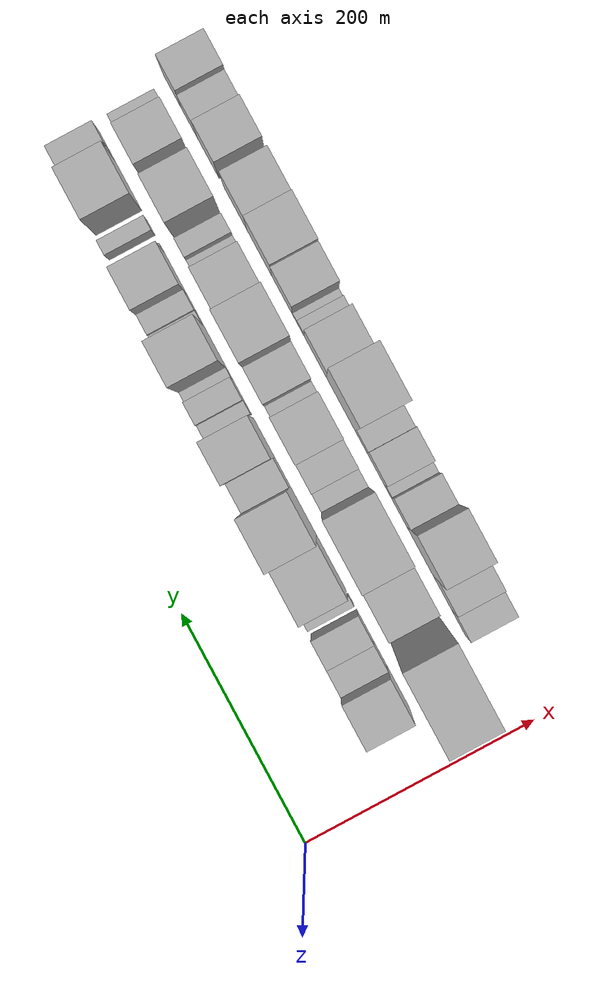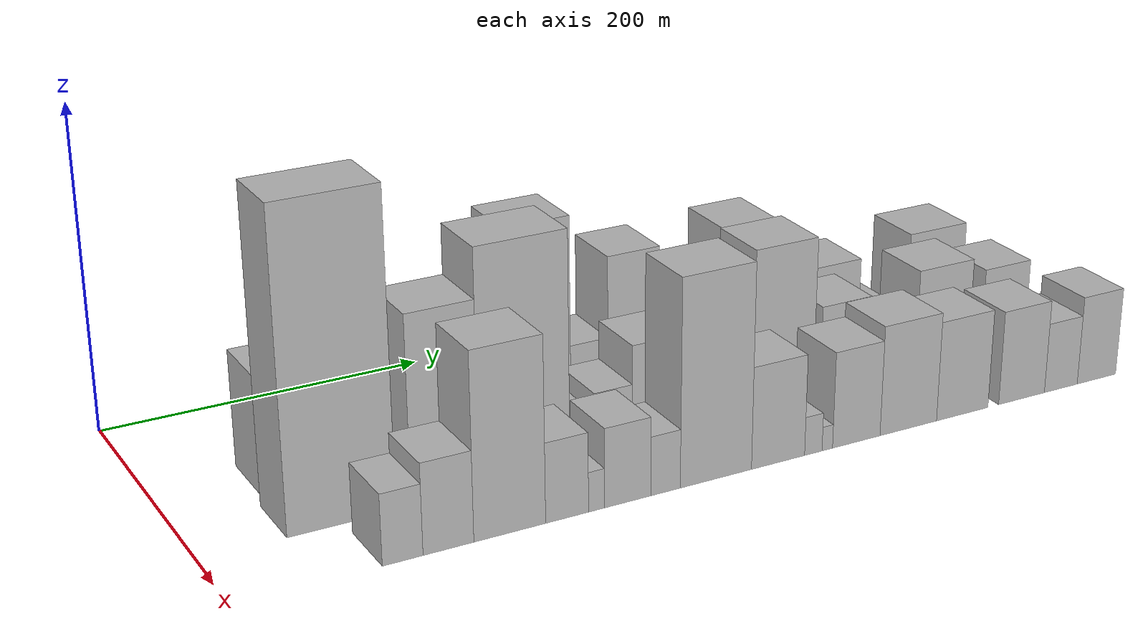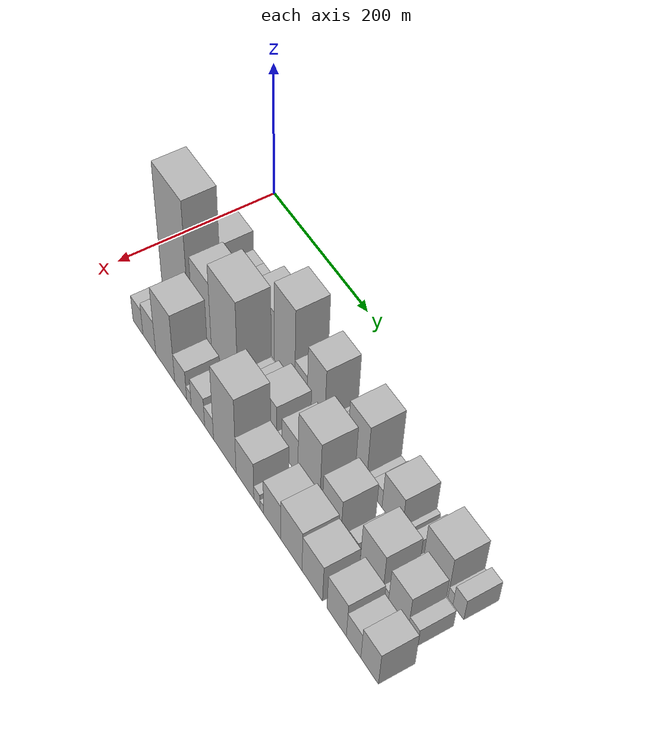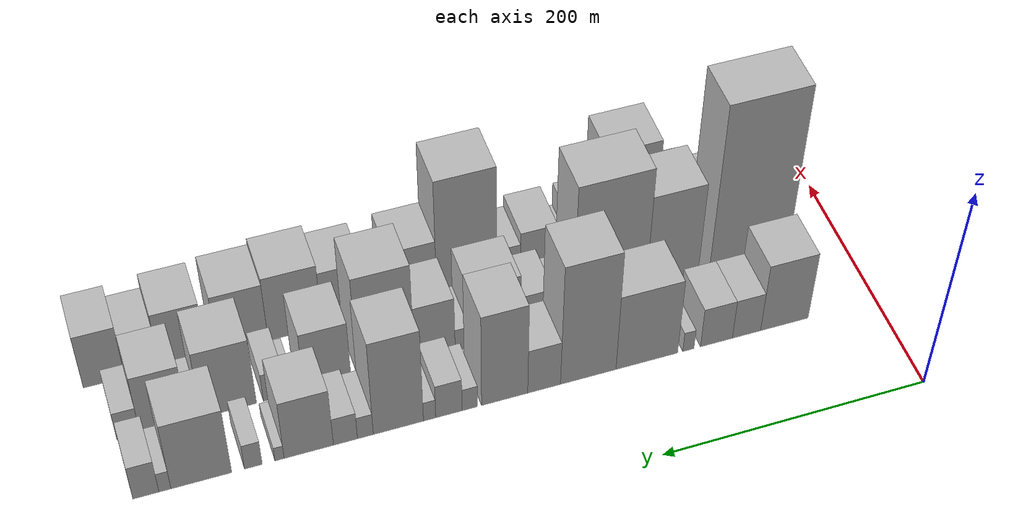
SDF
<sdf version="1.6">
 <world name="default">
  <model name="building_20">
   <static>1</static>
   <pose>100.0000 73.5250 0 0.000000 0.000000 0.000000</pose>
   <link name="link">
    <pose>0 0 36.00 0 0 0</pose>
    <collision name="collision"><geometry><box><size>40.0000 37.7700 72.0000</size></box></geometry></collision>
    <visual name="visual">
     <cast_shadows>0</cast_shadows>
     <geometry><box><size>40.0000 37.7700 72.0000</size></box></geometry>
     <material>
      <script>
       <uri>model://HANNAS_wall/materials/scripts</uri>
       <uri>model://HANNAS_wall/materials/textures</uri>
       <name>vrc/HANNAS_wall</name>
      </script>
     </material>
    </visual>
   </link>
  </model>
  <model name="building_21">
   <static>1</static>
   <pose>100.0000 103.5133 0 0.000000 0.000000 0.000000</pose>
   <link name="link">
    <pose>0 0 21.00 0 0 0</pose>
    <collision name="collision"><geometry><box><size>40.0000 22.2065 42.0000</size></box></geometry></collision>
    <visual name="visual">
     <cast_shadows>0</cast_shadows>
     <geometry><box><size>40.0000 22.2065 42.0000</size></box></geometry>
     <material>
      <script>
       <uri>model://HANNAS_wall/materials/scripts</uri>
       <uri>model://HANNAS_wall/materials/textures</uri>
       <name>vrc/HANNAS_wall</name>
      </script>
     </material>
    </visual>
   </link>
  </model>
  <model name="building_22">
   <static>1</static>
   <pose>100.0000 127.0962 0 0.000000 0.000000 0.000000</pose>
   <link name="link">
    <pose>0 0 21.00 0 0 0</pose>
    <collision name="collision"><geometry><box><size>40.0000 24.9593 42.0000</size></box></geometry></collision>
    <visual name="visual">
     <cast_shadows>0</cast_shadows>
     <geometry><box><size>40.0000 24.9593 42.0000</size></box></geometry>
     <material>
      <script>
       <uri>model://HANNAS_wall/materials/scripts</uri>
       <uri>model://HANNAS_wall/materials/textures</uri>
       <name>vrc/HANNAS_wall</name>
      </script>
     </material>
    </visual>
   </link>
  </model>
  <model name="building_23">
   <static>1</static>
   <pose>100.0000 148.9593 0 0.000000 0.000000 0.000000</pose>
   <link name="link">
    <pose>0 0 10.50 0 0 0</pose>
    <collision name="collision"><geometry><box><size>40.0000 8.7669 21.0000</size></box></geometry></collision>
    <visual name="visual">
     <cast_shadows>0</cast_shadows>
     <geometry><box><size>40.0000 8.7669 21.0000</size></box></geometry>
     <material>
      <script>
       <uri>model://HANNAS_wall/materials/scripts</uri>
       <uri>model://HANNAS_wall/materials/textures</uri>
       <name>vrc/HANNAS_wall</name>
      </script>
     </material>
    </visual>
   </link>
  </model>
  <model name="building_24">
   <static>1</static>
   <pose>100.0000 181.0930 0 0.000000 0.000000 0.000000</pose>
   <link name="link">
    <pose>0 0 40.50 0 0 0</pose>
    <collision name="collision"><geometry><box><size>40.0000 47.5004 81.0000</size></box></geometry></collision>
    <visual name="visual">
     <cast_shadows>0</cast_shadows>
     <geometry><box><size>40.0000 47.5004 81.0000</size></box></geometry>
     <material>
      <script>
       <uri>model://HANNAS_wall/materials/scripts</uri>
       <uri>model://HANNAS_wall/materials/textures</uri>
       <name>vrc/HANNAS_wall</name>
      </script>
     </material>
    </visual>
   </link>
  </model>
  <model name="building_25">
   <static>1</static>
   <pose>100.0000 225.9789 0 0.000000 0.000000 0.000000</pose>
   <link name="link">
    <pose>0 0 64.50 0 0 0</pose>
    <collision name="collision"><geometry><box><size>40.0000 42.2713 129.0000</size></box></geometry></collision>
    <visual name="visual">
     <cast_shadows>0</cast_shadows>
     <geometry><box><size>40.0000 42.2713 129.0000</size></box></geometry>
     <material>
      <script>
       <uri>model://HANNAS_wall/materials/scripts</uri>
       <uri>model://HANNAS_wall/materials/textures</uri>
       <name>vrc/HANNAS_wall</name>
      </script>
     </material>
    </visual>
   </link>
  </model>
  <model name="building_26">
   <static>1</static>
   <pose>100.0000 259.4690 0 0.000000 0.000000 0.000000</pose>
   <link name="link">
    <pose>0 0 24.00 0 0 0</pose>
    <collision name="collision"><geometry><box><size>40.0000 24.7089 48.0000</size></box></geometry></collision>
    <visual name="visual">
     <cast_shadows>0</cast_shadows>
     <geometry><box><size>40.0000 24.7089 48.0000</size></box></geometry>
     <material>
      <script>
       <uri>model://HANNAS_wall/materials/scripts</uri>
       <uri>model://HANNAS_wall/materials/textures</uri>
       <name>vrc/HANNAS_wall</name>
      </script>
     </material>
    </visual>
   </link>
  </model>
  <model name="building_27">
   <static>1</static>
   <pose>100.0000 289.0918 0 0.000000 0.000000 0.000000</pose>
   <link name="link">
    <pose>0 0 49.50 0 0 0</pose>
    <collision name="collision"><geometry><box><size>40.0000 34.5367 99.0000</size></box></geometry></collision>
    <visual name="visual">
     <cast_shadows>0</cast_shadows>
     <geometry><box><size>40.0000 34.5367 99.0000</size></box></geometry>
     <material>
      <script>
       <uri>model://HANNAS_wall/materials/scripts</uri>
       <uri>model://HANNAS_wall/materials/textures</uri>
       <name>vrc/HANNAS_wall</name>
      </script>
     </material>
    </visual>
   </link>
  </model>
  <model name="building_28">
   <static>1</static>
   <pose>100.0000 315.0455 0 0.000000 0.000000 0.000000</pose>
   <link name="link">
    <pose>0 0 12.00 0 0 0</pose>
    <collision name="collision"><geometry><box><size>40.0000 11.3708 24.0000</size></box></geometry></collision>
    <visual name="visual">
     <cast_shadows>0</cast_shadows>
     <geometry><box><size>40.0000 11.3708 24.0000</size></box></geometry>
     <material>
      <script>
       <uri>model://HANNAS_wall/materials/scripts</uri>
       <uri>model://HANNAS_wall/materials/textures</uri>
       <name>vrc/HANNAS_wall</name>
      </script>
     </material>
    </visual>
   </link>
  </model>
  <model name="building_29">
   <static>1</static>
   <pose>100.0000 330.5013 0 0.000000 0.000000 0.000000</pose>
   <link name="link">
    <pose>0 0 18.00 0 0 0</pose>
    <collision name="collision"><geometry><box><size>40.0000 19.5408 36.0000</size></box></geometry></collision>
    <visual name="visual">
     <cast_shadows>0</cast_shadows>
     <geometry><box><size>40.0000 19.5408 36.0000</size></box></geometry>
     <material>
      <script>
       <uri>model://HANNAS_wall/materials/scripts</uri>
       <uri>model://HANNAS_wall/materials/textures</uri>
       <name>vrc/HANNAS_wall</name>
      </script>
     </material>
    </visual>
   </link>
  </model>
  <model name="building_30">
   <static>1</static>
   <pose>100.0000 344.7738 0 0.000000 0.000000 0.000000</pose>
   <link name="link">
    <pose>0 0 10.50 0 0 0</pose>
    <collision name="collision"><geometry><box><size>40.0000 9.0042 21.0000</size></box></geometry></collision>
    <visual name="visual">
     <cast_shadows>0</cast_shadows>
     <geometry><box><size>40.0000 9.0042 21.0000</size></box></geometry>
     <material>
      <script>
       <uri>model://HANNAS_wall/materials/scripts</uri>
       <uri>model://HANNAS_wall/materials/textures</uri>
       <name>vrc/HANNAS_wall</name>
      </script>
     </material>
    </visual>
   </link>
  </model>
  <model name="building_31">
   <static>1</static>
   <pose>100.0000 367.6238 0 0.000000 0.000000 0.000000</pose>
   <link name="link">
    <pose>0 0 51.00 0 0 0</pose>
    <collision name="collision"><geometry><box><size>40.0000 36.6956 102.0000</size></box></geometry></collision>
    <visual name="visual">
     <cast_shadows>0</cast_shadows>
     <geometry><box><size>40.0000 36.6956 102.0000</size></box></geometry>
     <material>
      <script>
       <uri>model://HANNAS_wall/materials/scripts</uri>
       <uri>model://HANNAS_wall/materials/textures</uri>
       <name>vrc/HANNAS_wall</name>
      </script>
     </material>
    </visual>
   </link>
  </model>
  <model name="building_32">
   <static>1</static>
   <pose>100.0000 391.7401 0 0.000000 0.000000 0.000000</pose>
   <link name="link">
    <pose>0 0 12.00 0 0 0</pose>
    <collision name="collision"><geometry><box><size>40.0000 11.5371 24.0000</size></box></geometry></collision>
    <visual name="visual">
     <cast_shadows>0</cast_shadows>
     <geometry><box><size>40.0000 11.5371 24.0000</size></box></geometry>
     <material>
      <script>
       <uri>model://HANNAS_wall/materials/scripts</uri>
       <uri>model://HANNAS_wall/materials/textures</uri>
       <name>vrc/HANNAS_wall</name>
      </script>
     </material>
    </visual>
   </link>
  </model>
  <model name="building_33">
   <static>1</static>
   <pose>100.0000 406.1605 0 0.000000 0.000000 0.000000</pose>
   <link name="link">
    <pose>0 0 15.00 0 0 0</pose>
    <collision name="collision"><geometry><box><size>40.0000 17.3037 30.0000</size></box></geometry></collision>
    <visual name="visual">
     <cast_shadows>0</cast_shadows>
     <geometry><box><size>40.0000 17.3037 30.0000</size></box></geometry>
     <material>
      <script>
       <uri>model://HANNAS_wall/materials/scripts</uri>
       <uri>model://HANNAS_wall/materials/textures</uri>
       <name>vrc/HANNAS_wall</name>
      </script>
     </material>
    </visual>
   </link>
  </model>
  <model name="building_34">
   <static>1</static>
   <pose>100.0000 432.5061 0 0.000000 0.000000 0.000000</pose>
   <link name="link">
    <pose>0 0 31.50 0 0 0</pose>
    <collision name="collision"><geometry><box><size>40.0000 35.3875 63.0000</size></box></geometry></collision>
    <visual name="visual">
     <cast_shadows>0</cast_shadows>
     <geometry><box><size>40.0000 35.3875 63.0000</size></box></geometry>
     <material>
      <script>
       <uri>model://HANNAS_wall/materials/scripts</uri>
       <uri>model://HANNAS_wall/materials/textures</uri>
       <name>vrc/HANNAS_wall</name>
      </script>
     </material>
    </visual>
   </link>
  </model>
  <model name="building_35">
   <static>1</static>
   <pose>100.0000 453.4936 0 0.000000 0.000000 0.000000</pose>
   <link name="link">
    <pose>0 0 7.50 0 0 0</pose>
    <collision name="collision"><geometry><box><size>40.0000 6.5874 15.0000</size></box></geometry></collision>
    <visual name="visual">
     <cast_shadows>0</cast_shadows>
     <geometry><box><size>40.0000 6.5874 15.0000</size></box></geometry>
     <material>
      <script>
       <uri>model://HANNAS_wall/materials/scripts</uri>
       <uri>model://HANNAS_wall/materials/textures</uri>
       <name>vrc/HANNAS_wall</name>
      </script>
     </material>
    </visual>
   </link>
  </model>
  <model name="building_36">
   <static>1</static>
   <pose>100.0000 472.0813 0 0.000000 0.000000 0.000000</pose>
   <link name="link">
    <pose>0 0 13.50 0 0 0</pose>
    <collision name="collision"><geometry><box><size>40.0000 12.5881 27.0000</size></box></geometry></collision>
    <visual name="visual">
     <cast_shadows>0</cast_shadows>
     <geometry><box><size>40.0000 12.5881 27.0000</size></box></geometry>
     <material>
      <script>
       <uri>model://HANNAS_wall/materials/scripts</uri>
       <uri>model://HANNAS_wall/materials/textures</uri>
       <name>vrc/HANNAS_wall</name>
      </script>
     </material>
    </visual>
   </link>
  </model>
  <model name="building_37">
   <static>1</static>
   <pose>100.0000 508.7297 0 0.000000 0.000000 0.000000</pose>
   <link name="link">
    <pose>0 0 36.00 0 0 0</pose>
    <collision name="collision"><geometry><box><size>40.0000 42.7086 72.0000</size></box></geometry></collision>
    <visual name="visual">
     <cast_shadows>0</cast_shadows>
     <geometry><box><size>40.0000 42.7086 72.0000</size></box></geometry>
     <material>
      <script>
       <uri>model://HANNAS_wall/materials/scripts</uri>
       <uri>model://HANNAS_wall/materials/textures</uri>
       <name>vrc/HANNAS_wall</name>
      </script>
     </material>
    </visual>
   </link>
  </model>
  <model name="building_38">
   <static>1</static>
   <pose>100.0000 534.2845 0 0.000000 0.000000 0.000000</pose>
   <link name="link">
    <pose>0 0 10.50 0 0 0</pose>
    <collision name="collision"><geometry><box><size>40.0000 8.4009 21.0000</size></box></geometry></collision>
    <visual name="visual">
     <cast_shadows>0</cast_shadows>
     <geometry><box><size>40.0000 8.4009 21.0000</size></box></geometry>
     <material>
      <script>
       <uri>model://HANNAS_wall/materials/scripts</uri>
       <uri>model://HANNAS_wall/materials/textures</uri>
       <name>vrc/HANNAS_wall</name>
      </script>
     </material>
    </visual>
   </link>
  </model>
  <model name="building_39">
   <static>1</static>
   <pose>100.0000 547.5120 0 0.000000 0.000000 0.000000</pose>
   <link name="link">
    <pose>0 0 18.00 0 0 0</pose>
    <collision name="collision"><geometry><box><size>40.0000 18.0543 36.0000</size></box></geometry></collision>
    <visual name="visual">
     <cast_shadows>0</cast_shadows>
     <geometry><box><size>40.0000 18.0543 36.0000</size></box></geometry>
     <material>
      <script>
       <uri>model://HANNAS_wall/materials/scripts</uri>
       <uri>model://HANNAS_wall/materials/textures</uri>
       <name>vrc/HANNAS_wall</name>
      </script>
     </material>
    </visual>
   </link>
  </model>
  <model name="building_57">
   <static>1</static>
   <pose>152.0000 81.4601 0 0.000000 0.000000 0.000000</pose>
   <link name="link">
    <pose>0 0 94.50 0 0 0</pose>
    <collision name="collision"><geometry><box><size>40.0000 62.7515 189.0000</size></box></geometry></collision>
    <visual name="visual">
     <cast_shadows>0</cast_shadows>
     <geometry><box><size>40.0000 62.7515 189.0000</size></box></geometry>
     <material>
      <script>
       <uri>model://HANNAS_wall/materials/scripts</uri>
       <uri>model://HANNAS_wall/materials/textures</uri>
       <name>vrc/HANNAS_wall</name>
      </script>
     </material>
    </visual>
   </link>
  </model>
  <model name="building_58">
   <static>1</static>
   <pose>152.0000 142.2829 0 0.000000 0.000000 0.000000</pose>
   <link name="link">
    <pose>0 0 57.00 0 0 0</pose>
    <collision name="collision"><geometry><box><size>40.0000 40.8940 114.0000</size></box></geometry></collision>
    <visual name="visual">
     <cast_shadows>0</cast_shadows>
     <geometry><box><size>40.0000 40.8940 114.0000</size></box></geometry>
     <material>
      <script>
       <uri>model://HANNAS_wall/materials/scripts</uri>
       <uri>model://HANNAS_wall/materials/textures</uri>
       <name>vrc/HANNAS_wall</name>
      </script>
     </material>
    </visual>
   </link>
  </model>
  <model name="building_59">
   <static>1</static>
   <pose>152.0000 190.9574 0 0.000000 0.000000 0.000000</pose>
   <link name="link">
    <pose>0 0 72.00 0 0 0</pose>
    <collision name="collision"><geometry><box><size>40.0000 56.4551 144.0000</size></box></geometry></collision>
    <visual name="visual">
     <cast_shadows>0</cast_shadows>
     <geometry><box><size>40.0000 56.4551 144.0000</size></box></geometry>
     <material>
      <script>
       <uri>model://HANNAS_wall/materials/scripts</uri>
       <uri>model://HANNAS_wall/materials/textures</uri>
       <name>vrc/HANNAS_wall</name>
      </script>
     </material>
    </visual>
   </link>
  </model>
  <model name="building_60">
   <static>1</static>
   <pose>152.0000 227.0523 0 0.000000 0.000000 0.000000</pose>
   <link name="link">
    <pose>0 0 15.00 0 0 0</pose>
    <collision name="collision"><geometry><box><size>40.0000 15.7348 30.0000</size></box></geometry></collision>
    <visual name="visual">
     <cast_shadows>0</cast_shadows>
     <geometry><box><size>40.0000 15.7348 30.0000</size></box></geometry>
     <material>
      <script>
       <uri>model://HANNAS_wall/materials/scripts</uri>
       <uri>model://HANNAS_wall/materials/textures</uri>
       <name>vrc/HANNAS_wall</name>
      </script>
     </material>
    </visual>
   </link>
  </model>
  <model name="building_61">
   <static>1</static>
   <pose>152.0000 247.2049 0 0.000000 0.000000 0.000000</pose>
   <link name="link">
    <pose>0 0 21.00 0 0 0</pose>
    <collision name="collision"><geometry><box><size>40.0000 24.5704 42.0000</size></box></geometry></collision>
    <visual name="visual">
     <cast_shadows>0</cast_shadows>
     <geometry><box><size>40.0000 24.5704 42.0000</size></box></geometry>
     <material>
      <script>
       <uri>model://HANNAS_wall/materials/scripts</uri>
       <uri>model://HANNAS_wall/materials/textures</uri>
       <name>vrc/HANNAS_wall</name>
      </script>
     </material>
    </visual>
   </link>
  </model>
  <model name="building_62">
   <static>1</static>
   <pose>152.0000 279.1391 0 0.000000 0.000000 0.000000</pose>
   <link name="link">
    <pose>0 0 33.00 0 0 0</pose>
    <collision name="collision"><geometry><box><size>40.0000 39.2980 66.0000</size></box></geometry></collision>
    <visual name="visual">
     <cast_shadows>0</cast_shadows>
     <geometry><box><size>40.0000 39.2980 66.0000</size></box></geometry>
     <material>
      <script>
       <uri>model://HANNAS_wall/materials/scripts</uri>
       <uri>model://HANNAS_wall/materials/textures</uri>
       <name>vrc/HANNAS_wall</name>
      </script>
     </material>
    </visual>
   </link>
  </model>
  <model name="building_63">
   <static>1</static>
   <pose>152.0000 304.1023 0 0.000000 0.000000 0.000000</pose>
   <link name="link">
    <pose>0 0 12.00 0 0 0</pose>
    <collision name="collision"><geometry><box><size>40.0000 10.6284 24.0000</size></box></geometry></collision>
    <visual name="visual">
     <cast_shadows>0</cast_shadows>
     <geometry><box><size>40.0000 10.6284 24.0000</size></box></geometry>
     <material>
      <script>
       <uri>model://HANNAS_wall/materials/scripts</uri>
       <uri>model://HANNAS_wall/materials/textures</uri>
       <name>vrc/HANNAS_wall</name>
      </script>
     </material>
    </visual>
   </link>
  </model>
  <model name="building_64">
   <static>1</static>
   <pose>152.0000 324.8230 0 0.000000 0.000000 0.000000</pose>
   <link name="link">
    <pose>0 0 30.00 0 0 0</pose>
    <collision name="collision"><geometry><box><size>40.0000 30.8130 60.0000</size></box></geometry></collision>
    <visual name="visual">
     <cast_shadows>0</cast_shadows>
     <geometry><box><size>40.0000 30.8130 60.0000</size></box></geometry>
     <material>
      <script>
       <uri>model://HANNAS_wall/materials/scripts</uri>
       <uri>model://HANNAS_wall/materials/textures</uri>
       <name>vrc/HANNAS_wall</name>
      </script>
     </material>
    </visual>
   </link>
  </model>
  <model name="building_65">
   <static>1</static>
   <pose>152.0000 361.3127 0 0.000000 0.000000 0.000000</pose>
   <link name="link">
    <pose>0 0 54.00 0 0 0</pose>
    <collision name="collision"><geometry><box><size>40.0000 42.1664 108.0000</size></box></geometry></collision>
    <visual name="visual">
     <cast_shadows>0</cast_shadows>
     <geometry><box><size>40.0000 42.1664 108.0000</size></box></geometry>
     <material>
      <script>
       <uri>model://HANNAS_wall/materials/scripts</uri>
       <uri>model://HANNAS_wall/materials/textures</uri>
       <name>vrc/HANNAS_wall</name>
      </script>
     </material>
    </visual>
   </link>
  </model>
  <model name="building_66">
   <static>1</static>
   <pose>152.0000 404.7607 0 0.000000 0.000000 0.000000</pose>
   <link name="link">
    <pose>0 0 31.50 0 0 0</pose>
    <collision name="collision"><geometry><box><size>40.0000 34.7295 63.0000</size></box></geometry></collision>
    <visual name="visual">
     <cast_shadows>0</cast_shadows>
     <geometry><box><size>40.0000 34.7295 63.0000</size></box></geometry>
     <material>
      <script>
       <uri>model://HANNAS_wall/materials/scripts</uri>
       <uri>model://HANNAS_wall/materials/textures</uri>
       <name>vrc/HANNAS_wall</name>
      </script>
     </material>
    </visual>
   </link>
  </model>
  <model name="building_67">
   <static>1</static>
   <pose>152.0000 431.7771 0 0.000000 0.000000 0.000000</pose>
   <link name="link">
    <pose>0 0 7.50 0 0 0</pose>
    <collision name="collision"><geometry><box><size>40.0000 7.3034 15.0000</size></box></geometry></collision>
    <visual name="visual">
     <cast_shadows>0</cast_shadows>
     <geometry><box><size>40.0000 7.3034 15.0000</size></box></geometry>
     <material>
      <script>
       <uri>model://HANNAS_wall/materials/scripts</uri>
       <uri>model://HANNAS_wall/materials/textures</uri>
       <name>vrc/HANNAS_wall</name>
      </script>
     </material>
    </visual>
   </link>
  </model>
  <model name="building_68">
   <static>1</static>
   <pose>152.0000 443.6562 0 0.000000 0.000000 0.000000</pose>
   <link name="link">
    <pose>0 0 15.00 0 0 0</pose>
    <collision name="collision"><geometry><box><size>40.0000 16.4549 30.0000</size></box></geometry></collision>
    <visual name="visual">
     <cast_shadows>0</cast_shadows>
     <geometry><box><size>40.0000 16.4549 30.0000</size></box></geometry>
     <material>
      <script>
       <uri>model://HANNAS_wall/materials/scripts</uri>
       <uri>model://HANNAS_wall/materials/textures</uri>
       <name>vrc/HANNAS_wall</name>
      </script>
     </material>
    </visual>
   </link>
  </model>
  <model name="building_69">
   <static>1</static>
   <pose>152.0000 476.8452 0 0.000000 0.000000 0.000000</pose>
   <link name="link">
    <pose>0 0 36.00 0 0 0</pose>
    <collision name="collision"><geometry><box><size>40.0000 39.9231 72.0000</size></box></geometry></collision>
    <visual name="visual">
     <cast_shadows>0</cast_shadows>
     <geometry><box><size>40.0000 39.9231 72.0000</size></box></geometry>
     <material>
      <script>
       <uri>model://HANNAS_wall/materials/scripts</uri>
       <uri>model://HANNAS_wall/materials/textures</uri>
       <name>vrc/HANNAS_wall</name>
      </script>
     </material>
    </visual>
   </link>
  </model>
  <model name="building_70">
   <static>1</static>
   <pose>152.0000 501.6556 0 0.000000 0.000000 0.000000</pose>
   <link name="link">
    <pose>0 0 10.50 0 0 0</pose>
    <collision name="collision"><geometry><box><size>40.0000 9.6977 21.0000</size></box></geometry></collision>
    <visual name="visual">
     <cast_shadows>0</cast_shadows>
     <geometry><box><size>40.0000 9.6977 21.0000</size></box></geometry>
     <material>
      <script>
       <uri>model://HANNAS_wall/materials/scripts</uri>
       <uri>model://HANNAS_wall/materials/textures</uri>
       <name>vrc/HANNAS_wall</name>
      </script>
     </material>
    </visual>
   </link>
  </model>
  <model name="building_71">
   <static>1</static>
   <pose>152.0000 523.5886 0 0.000000 0.000000 0.000000</pose>
   <link name="link">
    <pose>0 0 31.50 0 0 0</pose>
    <collision name="collision"><geometry><box><size>40.0000 34.1682 63.0000</size></box></geometry></collision>
    <visual name="visual">
     <cast_shadows>0</cast_shadows>
     <geometry><box><size>40.0000 34.1682 63.0000</size></box></geometry>
     <material>
      <script>
       <uri>model://HANNAS_wall/materials/scripts</uri>
       <uri>model://HANNAS_wall/materials/textures</uri>
       <name>vrc/HANNAS_wall</name>
      </script>
     </material>
    </visual>
   </link>
  </model>
  <model name="building_72">
   <static>1</static>
   <pose>152.0000 548.8191 0 0.000000 0.000000 0.000000</pose>
   <link name="link">
    <pose>0 0 15.00 0 0 0</pose>
    <collision name="collision"><geometry><box><size>40.0000 16.2928 30.0000</size></box></geometry></collision>
    <visual name="visual">
     <cast_shadows>0</cast_shadows>
     <geometry><box><size>40.0000 16.2928 30.0000</size></box></geometry>
     <material>
      <script>
       <uri>model://HANNAS_wall/materials/scripts</uri>
       <uri>model://HANNAS_wall/materials/textures</uri>
       <name>vrc/HANNAS_wall</name>
      </script>
     </material>
    </visual>
   </link>
  </model>
  <model name="building_89">
   <static>1</static>
   <pose>204.0000 94.0925 0 0.000000 0.000000 0.000000</pose>
   <link name="link">
    <pose>0 0 21.00 0 0 0</pose>
    <collision name="collision"><geometry><box><size>40.0000 23.0177 42.0000</size></box></geometry></collision>
    <visual name="visual">
     <cast_shadows>0</cast_shadows>
     <geometry><box><size>40.0000 23.0177 42.0000</size></box></geometry>
     <material>
      <script>
       <uri>model://HANNAS_wall/materials/scripts</uri>
       <uri>model://HANNAS_wall/materials/textures</uri>
       <name>vrc/HANNAS_wall</name>
      </script>
     </material>
    </visual>
   </link>
  </model>
  <model name="building_90">
   <static>1</static>
   <pose>204.0000 120.2421 0 0.000000 0.000000 0.000000</pose>
   <link name="link">
    <pose>0 0 27.00 0 0 0</pose>
    <collision name="collision"><geometry><box><size>40.0000 29.2814 54.0000</size></box></geometry></collision>
    <visual name="visual">
     <cast_shadows>0</cast_shadows>
     <geometry><box><size>40.0000 29.2814 54.0000</size></box></geometry>
     <material>
      <script>
       <uri>model://HANNAS_wall/materials/scripts</uri>
       <uri>model://HANNAS_wall/materials/textures</uri>
       <name>vrc/HANNAS_wall</name>
      </script>
     </material>
    </visual>
   </link>
  </model>
  <model name="building_91">
   <static>1</static>
   <pose>204.0000 156.1211 0 0.000000 0.000000 0.000000</pose>
   <link name="link">
    <pose>0 0 55.50 0 0 0</pose>
    <collision name="collision"><geometry><box><size>40.0000 42.4765 111.0000</size></box></geometry></collision>
    <visual name="visual">
     <cast_shadows>0</cast_shadows>
     <geometry><box><size>40.0000 42.4765 111.0000</size></box></geometry>
     <material>
      <script>
       <uri>model://HANNAS_wall/materials/scripts</uri>
       <uri>model://HANNAS_wall/materials/textures</uri>
       <name>vrc/HANNAS_wall</name>
      </script>
     </material>
    </visual>
   </link>
  </model>
  <model name="building_92">
   <static>1</static>
   <pose>204.0000 190.3782 0 0.000000 0.000000 0.000000</pose>
   <link name="link">
    <pose>0 0 24.00 0 0 0</pose>
    <collision name="collision"><geometry><box><size>40.0000 26.0378 48.0000</size></box></geometry></collision>
    <visual name="visual">
     <cast_shadows>0</cast_shadows>
     <geometry><box><size>40.0000 26.0378 48.0000</size></box></geometry>
     <material>
      <script>
       <uri>model://HANNAS_wall/materials/scripts</uri>
       <uri>model://HANNAS_wall/materials/textures</uri>
       <name>vrc/HANNAS_wall</name>
      </script>
     </material>
    </visual>
   </link>
  </model>
  <model name="building_93">
   <static>1</static>
   <pose>204.0000 208.3843 0 0.000000 0.000000 0.000000</pose>
   <link name="link">
    <pose>0 0 12.00 0 0 0</pose>
    <collision name="collision"><geometry><box><size>40.0000 9.9744 24.0000</size></box></geometry></collision>
    <visual name="visual">
     <cast_shadows>0</cast_shadows>
     <geometry><box><size>40.0000 9.9744 24.0000</size></box></geometry>
     <material>
      <script>
       <uri>model://HANNAS_wall/materials/scripts</uri>
       <uri>model://HANNAS_wall/materials/textures</uri>
       <name>vrc/HANNAS_wall</name>
      </script>
     </material>
    </visual>
   </link>
  </model>
  <model name="building_94">
   <static>1</static>
   <pose>204.0000 227.7288 0 0.000000 0.000000 0.000000</pose>
   <link name="link">
    <pose>0 0 24.00 0 0 0</pose>
    <collision name="collision"><geometry><box><size>40.0000 28.7146 48.0000</size></box></geometry></collision>
    <visual name="visual">
     <cast_shadows>0</cast_shadows>
     <geometry><box><size>40.0000 28.7146 48.0000</size></box></geometry>
     <material>
      <script>
       <uri>model://HANNAS_wall/materials/scripts</uri>
       <uri>model://HANNAS_wall/materials/textures</uri>
       <name>vrc/HANNAS_wall</name>
      </script>
     </material>
    </visual>
   </link>
  </model>
  <model name="building_95">
   <static>1</static>
   <pose>204.0000 251.4653 0 0.000000 0.000000 0.000000</pose>
   <link name="link">
    <pose>0 0 18.00 0 0 0</pose>
    <collision name="collision"><geometry><box><size>40.0000 18.7584 36.0000</size></box></geometry></collision>
    <visual name="visual">
     <cast_shadows>0</cast_shadows>
     <geometry><box><size>40.0000 18.7584 36.0000</size></box></geometry>
     <material>
      <script>
       <uri>model://HANNAS_wall/materials/scripts</uri>
       <uri>model://HANNAS_wall/materials/textures</uri>
       <name>vrc/HANNAS_wall</name>
      </script>
     </material>
    </visual>
   </link>
  </model>
  <model name="building_96">
   <static>1</static>
   <pose>204.0000 284.0166 0 0.000000 0.000000 0.000000</pose>
   <link name="link">
    <pose>0 0 63.00 0 0 0</pose>
    <collision name="collision"><geometry><box><size>40.0000 46.3441 126.0000</size></box></geometry></collision>
    <visual name="visual">
     <cast_shadows>0</cast_shadows>
     <geometry><box><size>40.0000 46.3441 126.0000</size></box></geometry>
     <material>
      <script>
       <uri>model://HANNAS_wall/materials/scripts</uri>
       <uri>model://HANNAS_wall/materials/textures</uri>
       <name>vrc/HANNAS_wall</name>
      </script>
     </material>
    </visual>
   </link>
  </model>
  <model name="building_97">
   <static>1</static>
   <pose>204.0000 324.9783 0 0.000000 0.000000 0.000000</pose>
   <link name="link">
    <pose>0 0 31.50 0 0 0</pose>
    <collision name="collision"><geometry><box><size>40.0000 35.5793 63.0000</size></box></geometry></collision>
    <visual name="visual">
     <cast_shadows>0</cast_shadows>
     <geometry><box><size>40.0000 35.5793 63.0000</size></box></geometry>
     <material>
      <script>
       <uri>model://HANNAS_wall/materials/scripts</uri>
       <uri>model://HANNAS_wall/materials/textures</uri>
       <name>vrc/HANNAS_wall</name>
      </script>
     </material>
    </visual>
   </link>
  </model>
  <model name="building_98">
   <static>1</static>
   <pose>204.0000 348.7117 0 0.000000 0.000000 0.000000</pose>
   <link name="link">
    <pose>0 0 12.00 0 0 0</pose>
    <collision name="collision"><geometry><box><size>40.0000 11.8877 24.0000</size></box></geometry></collision>
    <visual name="visual">
     <cast_shadows>0</cast_shadows>
     <geometry><box><size>40.0000 11.8877 24.0000</size></box></geometry>
     <material>
      <script>
       <uri>model://HANNAS_wall/materials/scripts</uri>
       <uri>model://HANNAS_wall/materials/textures</uri>
       <name>vrc/HANNAS_wall</name>
      </script>
     </material>
    </visual>
   </link>
  </model>
  <model name="building_99">
   <static>1</static>
   <pose>204.0000 358.2454 0 0.000000 0.000000 0.000000</pose>
   <link name="link">
    <pose>0 0 7.50 0 0 0</pose>
    <collision name="collision"><geometry><box><size>40.0000 7.1798 15.0000</size></box></geometry></collision>
    <visual name="visual">
     <cast_shadows>0</cast_shadows>
     <geometry><box><size>40.0000 7.1798 15.0000</size></box></geometry>
     <material>
      <script>
       <uri>model://HANNAS_wall/materials/scripts</uri>
       <uri>model://HANNAS_wall/materials/textures</uri>
       <name>vrc/HANNAS_wall</name>
      </script>
     </material>
    </visual>
   </link>
  </model>
  <model name="building_100">
   <static>1</static>
   <pose>204.0000 378.3557 0 0.000000 0.000000 0.000000</pose>
   <link name="link">
    <pose>0 0 30.00 0 0 0</pose>
    <collision name="collision"><geometry><box><size>40.0000 33.0407 60.0000</size></box></geometry></collision>
    <visual name="visual">
     <cast_shadows>0</cast_shadows>
     <geometry><box><size>40.0000 33.0407 60.0000</size></box></geometry>
     <material>
      <script>
       <uri>model://HANNAS_wall/materials/scripts</uri>
       <uri>model://HANNAS_wall/materials/textures</uri>
       <name>vrc/HANNAS_wall</name>
      </script>
     </material>
    </visual>
   </link>
  </model>
  <model name="building_101">
   <static>1</static>
   <pose>204.0000 415.0387 0 0.000000 0.000000 0.000000</pose>
   <link name="link">
    <pose>0 0 34.50 0 0 0</pose>
    <collision name="collision"><geometry><box><size>40.0000 40.3254 69.0000</size></box></geometry></collision>
    <visual name="visual">
     <cast_shadows>0</cast_shadows>
     <geometry><box><size>40.0000 40.3254 69.0000</size></box></geometry>
     <material>
      <script>
       <uri>model://HANNAS_wall/materials/scripts</uri>
       <uri>model://HANNAS_wall/materials/textures</uri>
       <name>vrc/HANNAS_wall</name>
      </script>
     </material>
    </visual>
   </link>
  </model>
  <model name="building_102">
   <static>1</static>
   <pose>204.0000 454.0302 0 0.000000 0.000000 0.000000</pose>
   <link name="link">
    <pose>0 0 31.50 0 0 0</pose>
    <collision name="collision"><geometry><box><size>40.0000 37.6575 63.0000</size></box></geometry></collision>
    <visual name="visual">
     <cast_shadows>0</cast_shadows>
     <geometry><box><size>40.0000 37.6575 63.0000</size></box></geometry>
     <material>
      <script>
       <uri>model://HANNAS_wall/materials/scripts</uri>
       <uri>model://HANNAS_wall/materials/textures</uri>
       <name>vrc/HANNAS_wall</name>
      </script>
     </material>
    </visual>
   </link>
  </model>
  <model name="building_103">
   <static>1</static>
   <pose>204.0000 498.1391 0 0.000000 0.000000 0.000000</pose>
   <link name="link">
    <pose>0 0 30.00 0 0 0</pose>
    <collision name="collision"><geometry><box><size>40.0000 34.5605 60.0000</size></box></geometry></collision>
    <visual name="visual">
     <cast_shadows>0</cast_shadows>
     <geometry><box><size>40.0000 34.5605 60.0000</size></box></geometry>
     <material>
      <script>
       <uri>model://HANNAS_wall/materials/scripts</uri>
       <uri>model://HANNAS_wall/materials/textures</uri>
       <name>vrc/HANNAS_wall</name>
      </script>
     </material>
    </visual>
   </link>
  </model>
  <model name="building_104">
   <static>1</static>
   <pose>204.0000 528.0548 0 0.000000 0.000000 0.000000</pose>
   <link name="link">
    <pose>0 0 22.50 0 0 0</pose>
    <collision name="collision"><geometry><box><size>40.0000 25.2708 45.0000</size></box></geometry></collision>
    <visual name="visual">
     <cast_shadows>0</cast_shadows>
     <geometry><box><size>40.0000 25.2708 45.0000</size></box></geometry>
     <material>
      <script>
       <uri>model://HANNAS_wall/materials/scripts</uri>
       <uri>model://HANNAS_wall/materials/textures</uri>
       <name>vrc/HANNAS_wall</name>
      </script>
     </material>
    </visual>
   </link>
  </model>
  <model name="building_105">
   <static>1</static>
   <pose>204.0000 555.7095 0 0.000000 0.000000 0.000000</pose>
   <link name="link">
    <pose>0 0 28.50 0 0 0</pose>
    <collision name="collision"><geometry><box><size>40.0000 30.0388 57.0000</size></box></geometry></collision>
    <visual name="visual">
     <cast_shadows>0</cast_shadows>
     <geometry><box><size>40.0000 30.0388 57.0000</size></box></geometry>
     <material>
      <script>
       <uri>model://HANNAS_wall/materials/scripts</uri>
       <uri>model://HANNAS_wall/materials/textures</uri>
       <name>vrc/HANNAS_wall</name>
      </script>
     </material>
    </visual>
   </link>
  </model>
 </world>
</sdf>
